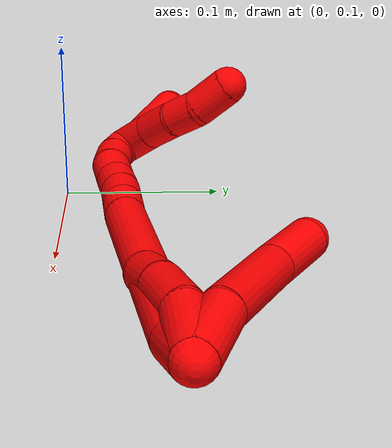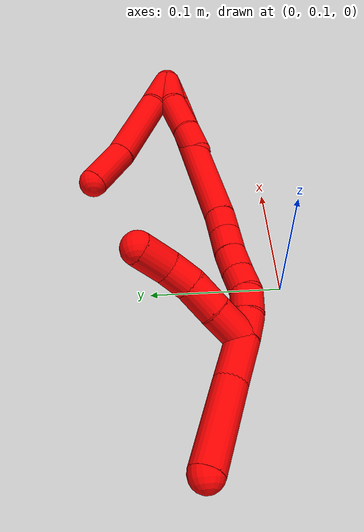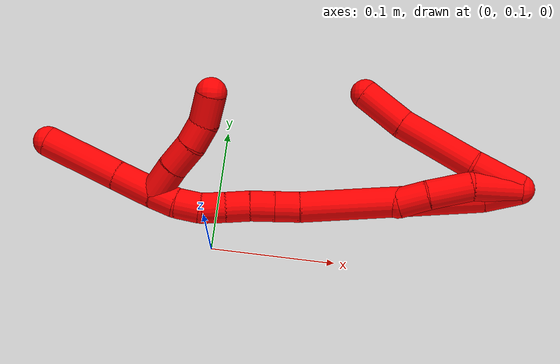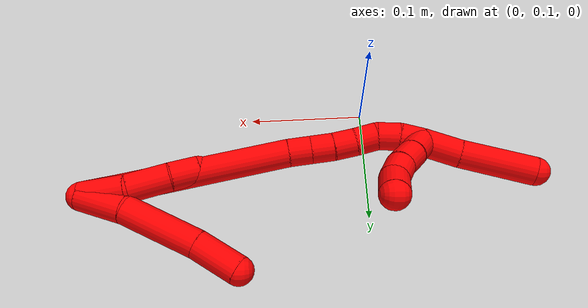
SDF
<sdf version="1.7">
 <world name="default">
  <model name="2">
   <static>0</static>
   <link name="2">
    <collision name="collision-cylinder-e_1_2_8">
     <pose>-0.008056 0.004382 -0.018598 -2.9102 -0.399006 2.09828</pose>
     <geometry><cylinder><radius>0.0125</radius><length>0.041473</length></cylinder></geometry>
     <surface>
      <friction><ode><mu>1.16</mu><mu2>1.16</mu2><slip1>0</slip1><slip2>0</slip2></ode></friction>
      <contact><ode><kp>1e+06</kp><kd>1</kd><max_vel>0</max_vel><min_depth>0.001</min_depth></ode></contact>
     </surface>
    </collision>
    <visual name="visual-cylinder-e_1_2_8">
     <pose>-0.008056 0.004382 -0.018598 -2.9102 -0.399006 2.09828</pose>
     <geometry><cylinder><radius>0.0125</radius><length>0.041473</length></cylinder></geometry>
     <material><ambient>1 0 0 1</ambient></material>
    </visual>
    <collision name="collision-cylinder-e_2_8_9">
     <pose>-0.025675 0.021858 -0.066697 -2.72385 -0.288028 1.20003</pose>
     <geometry><cylinder><radius>0.0125</radius><length>0.067324</length></cylinder></geometry>
     <surface>
      <friction><ode><mu>1.16</mu><mu2>1.16</mu2><slip1>0</slip1><slip2>0</slip2></ode></friction>
      <contact><ode><kp>1e+06</kp><kd>1</kd><max_vel>0</max_vel><min_depth>0.001</min_depth></ode></contact>
     </surface>
    </collision>
    <visual name="visual-cylinder-e_2_8_9">
     <pose>-0.025675 0.021858 -0.066697 -2.72385 -0.288028 1.20003</pose>
     <geometry><cylinder><radius>0.0125</radius><length>0.067324</length></cylinder></geometry>
     <material><ambient>1 0 0 1</ambient></material>
    </visual>
    <collision name="collision-cylinder-e_3_9_6">
     <pose>-0.043792 0.043852 -0.11269 -2.64678 -0.42824 1.42161</pose>
     <geometry><cylinder><radius>0.0125</radius><length>0.041203</length></cylinder></geometry>
     <surface>
      <friction><ode><mu>1.16</mu><mu2>1.16</mu2><slip1>0</slip1><slip2>0</slip2></ode></friction>
      <contact><ode><kp>1e+06</kp><kd>1</kd><max_vel>0</max_vel><min_depth>0.001</min_depth></ode></contact>
     </surface>
    </collision>
    <visual name="visual-cylinder-e_3_9_6">
     <pose>-0.043792 0.043852 -0.11269 -2.64678 -0.42824 1.42161</pose>
     <geometry><cylinder><radius>0.0125</radius><length>0.041203</length></cylinder></geometry>
     <material><ambient>1 0 0 1</ambient></material>
    </visual>
    <collision name="collision-cylinder-e_1_2_10">
     <pose>-0.003393 -0.003649 -0.018988 2.95172 -0.173729 -1.48154</pose>
     <geometry><cylinder><radius>0.0125</radius><length>0.039263</length></cylinder></geometry>
     <surface>
      <friction><ode><mu>1.16</mu><mu2>1.16</mu2><slip1>0</slip1><slip2>0</slip2></ode></friction>
      <contact><ode><kp>1e+06</kp><kd>1</kd><max_vel>0</max_vel><min_depth>0.001</min_depth></ode></contact>
     </surface>
    </collision>
    <visual name="visual-cylinder-e_1_2_10">
     <pose>-0.003393 -0.003649 -0.018988 2.95172 -0.173729 -1.48154</pose>
     <geometry><cylinder><radius>0.0125</radius><length>0.039263</length></cylinder></geometry>
     <material><ambient>1 0 0 1</ambient></material>
    </visual>
    <collision name="collision-cylinder-e_2_10_11">
     <pose>-0.004939 -0.011906 -0.055173 2.8798 0.103446 0.749329</pose>
     <geometry><cylinder><radius>0.0125</radius><length>0.035797</length></cylinder></geometry>
     <surface>
      <friction><ode><mu>1.16</mu><mu2>1.16</mu2><slip1>0</slip1><slip2>0</slip2></ode></friction>
      <contact><ode><kp>1e+06</kp><kd>1</kd><max_vel>0</max_vel><min_depth>0.001</min_depth></ode></contact>
     </surface>
    </collision>
    <visual name="visual-cylinder-e_2_10_11">
     <pose>-0.004939 -0.011906 -0.055173 2.8798 0.103446 0.749329</pose>
     <geometry><cylinder><radius>0.0125</radius><length>0.035797</length></cylinder></geometry>
     <material><ambient>1 0 0 1</ambient></material>
    </visual>
    <collision name="collision-cylinder-e_3_11_5">
     <pose>-0.000439 -0.019124 -0.084272 2.92575 0.214217 1.5632</pose>
     <geometry><cylinder><radius>0.0125</radius><length>0.02494</length></cylinder></geometry>
     <surface>
      <friction><ode><mu>1.16</mu><mu2>1.16</mu2><slip1>0</slip1><slip2>0</slip2></ode></friction>
      <contact><ode><kp>1e+06</kp><kd>1</kd><max_vel>0</max_vel><min_depth>0.001</min_depth></ode></contact>
     </surface>
    </collision>
    <visual name="visual-cylinder-e_3_11_5">
     <pose>-0.000439 -0.019124 -0.084272 2.92575 0.214217 1.5632</pose>
     <geometry><cylinder><radius>0.0125</radius><length>0.02494</length></cylinder></geometry>
     <material><ambient>1 0 0 1</ambient></material>
    </visual>
    <collision name="collision-cylinder-e_1_2_12">
     <pose>0.002838 -0.002611 -0.014577 2.96439 0.189316 1.63722</pose>
     <geometry><cylinder><radius>0.0125</radius><length>0.030157</length></cylinder></geometry>
     <surface>
      <friction><ode><mu>1.16</mu><mu2>1.16</mu2><slip1>0</slip1><slip2>0</slip2></ode></friction>
      <contact><ode><kp>1e+06</kp><kd>1</kd><max_vel>0</max_vel><min_depth>0.001</min_depth></ode></contact>
     </surface>
    </collision>
    <visual name="visual-cylinder-e_1_2_12">
     <pose>0.002838 -0.002611 -0.014577 2.96439 0.189316 1.63722</pose>
     <geometry><cylinder><radius>0.0125</radius><length>0.030157</length></cylinder></geometry>
     <material><ambient>1 0 0 1</ambient></material>
    </visual>
    <collision name="collision-cylinder-e_2_12_13">
     <pose>0.001899 -0.021203 -0.101906 2.92535 -0.050656 -0.458574</pose>
     <geometry><cylinder><radius>0.0125</radius><length>0.149165</length></cylinder></geometry>
     <surface>
      <friction><ode><mu>1.16</mu><mu2>1.16</mu2><slip1>0</slip1><slip2>0</slip2></ode></friction>
      <contact><ode><kp>1e+06</kp><kd>1</kd><max_vel>0</max_vel><min_depth>0.001</min_depth></ode></contact>
     </surface>
    </collision>
    <visual name="visual-cylinder-e_2_12_13">
     <pose>0.001899 -0.021203 -0.101906 2.92535 -0.050656 -0.458574</pose>
     <geometry><cylinder><radius>0.0125</radius><length>0.149165</length></cylinder></geometry>
     <material><ambient>1 0 0 1</ambient></material>
    </visual>
    <collision name="collision-cylinder-e_3_13_14">
     <pose>-0.002853 -0.038677 -0.184532 2.99164 -0.097364 -1.15074</pose>
     <geometry><cylinder><radius>0.0125</radius><length>0.020066</length></cylinder></geometry>
     <surface>
      <friction><ode><mu>1.16</mu><mu2>1.16</mu2><slip1>0</slip1><slip2>0</slip2></ode></friction>
      <contact><ode><kp>1e+06</kp><kd>1</kd><max_vel>0</max_vel><min_depth>0.001</min_depth></ode></contact>
     </surface>
    </collision>
    <visual name="visual-cylinder-e_3_13_14">
     <pose>-0.002853 -0.038677 -0.184532 2.99164 -0.097364 -1.15074</pose>
     <geometry><cylinder><radius>0.0125</radius><length>0.020066</length></cylinder></geometry>
     <material><ambient>1 0 0 1</ambient></material>
    </visual>
    <collision name="collision-cylinder-e_4_14_15">
     <pose>-0.004822 -0.041654 -0.204302 2.99258 -0.098938 -1.1713</pose>
     <geometry><cylinder><radius>0.0125</radius><length>0.020115</length></cylinder></geometry>
     <surface>
      <friction><ode><mu>1.16</mu><mu2>1.16</mu2><slip1>0</slip1><slip2>0</slip2></ode></friction>
      <contact><ode><kp>1e+06</kp><kd>1</kd><max_vel>0</max_vel><min_depth>0.001</min_depth></ode></contact>
     </surface>
    </collision>
    <visual name="visual-cylinder-e_4_14_15">
     <pose>-0.004822 -0.041654 -0.204302 2.99258 -0.098938 -1.1713</pose>
     <geometry><cylinder><radius>0.0125</radius><length>0.020115</length></cylinder></geometry>
     <material><ambient>1 0 0 1</ambient></material>
    </visual>
    <collision name="collision-cylinder-e_5_15_16">
     <pose>-0.006346 -0.045393 -0.224106 2.91796 -0.052215 -0.457005</pose>
     <geometry><cylinder><radius>0.0125</radius><length>0.020347</length></cylinder></geometry>
     <surface>
      <friction><ode><mu>1.16</mu><mu2>1.16</mu2><slip1>0</slip1><slip2>0</slip2></ode></friction>
      <contact><ode><kp>1e+06</kp><kd>1</kd><max_vel>0</max_vel><min_depth>0.001</min_depth></ode></contact>
     </surface>
    </collision>
    <visual name="visual-cylinder-e_5_15_16">
     <pose>-0.006346 -0.045393 -0.224106 2.91796 -0.052215 -0.457005</pose>
     <geometry><cylinder><radius>0.0125</radius><length>0.020347</length></cylinder></geometry>
     <material><ambient>1 0 0 1</ambient></material>
    </visual>
    <collision name="collision-cylinder-e_6_16_17">
     <pose>-0.008258 -0.050444 -0.243522 2.85547 -0.138475 -0.897359</pose>
     <geometry><cylinder><radius>0.0125</radius><length>0.020016</length></cylinder></geometry>
     <surface>
      <friction><ode><mu>1.16</mu><mu2>1.16</mu2><slip1>0</slip1><slip2>0</slip2></ode></friction>
      <contact><ode><kp>1e+06</kp><kd>1</kd><max_vel>0</max_vel><min_depth>0.001</min_depth></ode></contact>
     </surface>
    </collision>
    <visual name="visual-cylinder-e_6_16_17">
     <pose>-0.008258 -0.050444 -0.243522 2.85547 -0.138475 -0.897359</pose>
     <geometry><cylinder><radius>0.0125</radius><length>0.020016</length></cylinder></geometry>
     <material><ambient>1 0 0 1</ambient></material>
    </visual>
    <collision name="collision-cylinder-e_7_17_18">
     <pose>-0.011701 -0.053162 -0.262845 -3.13353 -0.206976 3.06401</pose>
     <geometry><cylinder><radius>0.0125</radius><length>0.020058</length></cylinder></geometry>
     <surface>
      <friction><ode><mu>1.16</mu><mu2>1.16</mu2><slip1>0</slip1><slip2>0</slip2></ode></friction>
      <contact><ode><kp>1e+06</kp><kd>1</kd><max_vel>0</max_vel><min_depth>0.001</min_depth></ode></contact>
     </surface>
    </collision>
    <visual name="visual-cylinder-e_7_17_18">
     <pose>-0.011701 -0.053162 -0.262845 -3.13353 -0.206976 3.06401</pose>
     <geometry><cylinder><radius>0.0125</radius><length>0.020058</length></cylinder></geometry>
     <material><ambient>1 0 0 1</ambient></material>
    </visual>
    <collision name="collision-cylinder-e_8_18_1">
     <pose>-0.016478 -0.051002 -0.282097 -2.92454 -0.273969 1.80388</pose>
     <geometry><cylinder><radius>0.0125</radius><length>0.020077</length></cylinder></geometry>
     <surface>
      <friction><ode><mu>1.16</mu><mu2>1.16</mu2><slip1>0</slip1><slip2>0</slip2></ode></friction>
      <contact><ode><kp>1e+06</kp><kd>1</kd><max_vel>0</max_vel><min_depth>0.001</min_depth></ode></contact>
     </surface>
    </collision>
    <visual name="visual-cylinder-e_8_18_1">
     <pose>-0.016478 -0.051002 -0.282097 -2.92454 -0.273969 1.80388</pose>
     <geometry><cylinder><radius>0.0125</radius><length>0.020077</length></cylinder></geometry>
     <material><ambient>1 0 0 1</ambient></material>
    </visual>
    <collision name="collision-cylinder-e_1_1_19">
     <pose>-0.030053 -0.044553 -0.283187 -0.48205 -0.856173 0.22339</pose>
     <geometry><cylinder><radius>0.0125</radius><length>0.028753</length></cylinder></geometry>
     <surface>
      <friction><ode><mu>1.16</mu><mu2>1.16</mu2><slip1>0</slip1><slip2>0</slip2></ode></friction>
      <contact><ode><kp>1e+06</kp><kd>1</kd><max_vel>0</max_vel><min_depth>0.001</min_depth></ode></contact>
     </surface>
    </collision>
    <visual name="visual-cylinder-e_1_1_19">
     <pose>-0.030053 -0.044553 -0.283187 -0.48205 -0.856173 0.22339</pose>
     <geometry><cylinder><radius>0.0125</radius><length>0.028753</length></cylinder></geometry>
     <material><ambient>1 0 0 1</ambient></material>
    </visual>
    <collision name="collision-cylinder-e_2_19_20">
     <pose>-0.049507 -0.036306 -0.266911 -0.455059 -0.772103 0.187664</pose>
     <geometry><cylinder><radius>0.0125</radius><length>0.024641</length></cylinder></geometry>
     <surface>
      <friction><ode><mu>1.16</mu><mu2>1.16</mu2><slip1>0</slip1><slip2>0</slip2></ode></friction>
      <contact><ode><kp>1e+06</kp><kd>1</kd><max_vel>0</max_vel><min_depth>0.001</min_depth></ode></contact>
     </surface>
    </collision>
    <visual name="visual-cylinder-e_2_19_20">
     <pose>-0.049507 -0.036306 -0.266911 -0.455059 -0.772103 0.187664</pose>
     <geometry><cylinder><radius>0.0125</radius><length>0.024641</length></cylinder></geometry>
     <material><ambient>1 0 0 1</ambient></material>
    </visual>
    <collision name="collision-cylinder-e_3_20_21">
     <pose>-0.06591 -0.028013 -0.25381 -0.706415 -0.854357 0.332544</pose>
     <geometry><cylinder><radius>0.0125</radius><length>0.020706</length></cylinder></geometry>
     <surface>
      <friction><ode><mu>1.16</mu><mu2>1.16</mu2><slip1>0</slip1><slip2>0</slip2></ode></friction>
      <contact><ode><kp>1e+06</kp><kd>1</kd><max_vel>0</max_vel><min_depth>0.001</min_depth></ode></contact>
     </surface>
    </collision>
    <visual name="visual-cylinder-e_3_20_21">
     <pose>-0.06591 -0.028013 -0.25381 -0.706415 -0.854357 0.332544</pose>
     <geometry><cylinder><radius>0.0125</radius><length>0.020706</length></cylinder></geometry>
     <material><ambient>1 0 0 1</ambient></material>
    </visual>
    <collision name="collision-cylinder-e_4_21_4">
     <pose>-0.085485 -0.019472 -0.245146 -0.868511 -1.1401 0.577958</pose>
     <geometry><cylinder><radius>0.0125</radius><length>0.0259</length></cylinder></geometry>
     <surface>
      <friction><ode><mu>1.16</mu><mu2>1.16</mu2><slip1>0</slip1><slip2>0</slip2></ode></friction>
      <contact><ode><kp>1e+06</kp><kd>1</kd><max_vel>0</max_vel><min_depth>0.001</min_depth></ode></contact>
     </surface>
    </collision>
    <visual name="visual-cylinder-e_4_21_4">
     <pose>-0.085485 -0.019472 -0.245146 -0.868511 -1.1401 0.577958</pose>
     <geometry><cylinder><radius>0.0125</radius><length>0.0259</length></cylinder></geometry>
     <material><ambient>1 0 0 1</ambient></material>
    </visual>
    <collision name="collision-cylinder-e_1_1_22">
     <pose>-0.023701 -0.044108 -0.307645 -2.85127 -0.261901 1.46664</pose>
     <geometry><cylinder><radius>0.0125</radius><length>0.034814</length></cylinder></geometry>
     <surface>
      <friction><ode><mu>1.16</mu><mu2>1.16</mu2><slip1>0</slip1><slip2>0</slip2></ode></friction>
      <contact><ode><kp>1e+06</kp><kd>1</kd><max_vel>0</max_vel><min_depth>0.001</min_depth></ode></contact>
     </surface>
    </collision>
    <visual name="visual-cylinder-e_1_1_22">
     <pose>-0.023701 -0.044108 -0.307645 -2.85127 -0.261901 1.46664</pose>
     <geometry><cylinder><radius>0.0125</radius><length>0.034814</length></cylinder></geometry>
     <material><ambient>1 0 0 1</ambient></material>
    </visual>
    <collision name="collision-cylinder-e_2_22_3">
     <pose>-0.039626 -0.032761 -0.353575 -2.92589 -0.357912 2.0629</pose>
     <geometry><cylinder><radius>0.0125</radius><length>0.065186</length></cylinder></geometry>
     <surface>
      <friction><ode><mu>1.16</mu><mu2>1.16</mu2><slip1>0</slip1><slip2>0</slip2></ode></friction>
      <contact><ode><kp>1e+06</kp><kd>1</kd><max_vel>0</max_vel><min_depth>0.001</min_depth></ode></contact>
     </surface>
    </collision>
    <visual name="visual-cylinder-e_2_22_3">
     <pose>-0.039626 -0.032761 -0.353575 -2.92589 -0.357912 2.0629</pose>
     <geometry><cylinder><radius>0.0125</radius><length>0.065186</length></cylinder></geometry>
     <material><ambient>1 0 0 1</ambient></material>
    </visual>
    <collision name="collision-sphere-3">
     <pose>-0.051044 -0.026227 -0.383395 0 -0 0</pose>
     <geometry><sphere><radius>0.0125</radius></sphere></geometry>
     <surface>
      <friction><ode><mu>1.16</mu><mu2>1.16</mu2><slip1>0</slip1><slip2>0</slip2></ode></friction>
      <contact><ode><kp>1e+06</kp><kd>1</kd><max_vel>0</max_vel><min_depth>0.001</min_depth></ode></contact>
     </surface>
    </collision>
    <visual name="visual-sphere-3">
     <pose>-0.051044 -0.026227 -0.383395 0 -0 0</pose>
     <geometry><sphere><radius>0.0125</radius></sphere></geometry>
     <material><ambient>1 0 0 1</ambient></material>
    </visual>
    <collision name="collision-sphere-22">
     <pose>-0.028208 -0.039295 -0.323755 0 -0 0</pose>
     <geometry><sphere><radius>0.0125</radius></sphere></geometry>
     <surface>
      <friction><ode><mu>1.16</mu><mu2>1.16</mu2><slip1>0</slip1><slip2>0</slip2></ode></friction>
      <contact><ode><kp>1e+06</kp><kd>1</kd><max_vel>0</max_vel><min_depth>0.001</min_depth></ode></contact>
     </surface>
    </collision>
    <visual name="visual-sphere-22">
     <pose>-0.028208 -0.039295 -0.323755 0 -0 0</pose>
     <geometry><sphere><radius>0.0125</radius></sphere></geometry>
     <material><ambient>1 0 0 1</ambient></material>
    </visual>
    <collision name="collision-sphere-4">
     <pose>-0.097253 -0.015345 -0.241653 0 -0 0</pose>
     <geometry><sphere><radius>0.0125</radius></sphere></geometry>
     <surface>
      <friction><ode><mu>1.16</mu><mu2>1.16</mu2><slip1>0</slip1><slip2>0</slip2></ode></friction>
      <contact><ode><kp>1e+06</kp><kd>1</kd><max_vel>0</max_vel><min_depth>0.001</min_depth></ode></contact>
     </surface>
    </collision>
    <visual name="visual-sphere-4">
     <pose>-0.097253 -0.015345 -0.241653 0 -0 0</pose>
     <geometry><sphere><radius>0.0125</radius></sphere></geometry>
     <material><ambient>1 0 0 1</ambient></material>
    </visual>
    <collision name="collision-sphere-21">
     <pose>-0.073718 -0.0236 -0.248638 0 -0 0</pose>
     <geometry><sphere><radius>0.0125</radius></sphere></geometry>
     <surface>
      <friction><ode><mu>1.16</mu><mu2>1.16</mu2><slip1>0</slip1><slip2>0</slip2></ode></friction>
      <contact><ode><kp>1e+06</kp><kd>1</kd><max_vel>0</max_vel><min_depth>0.001</min_depth></ode></contact>
     </surface>
    </collision>
    <visual name="visual-sphere-21">
     <pose>-0.073718 -0.0236 -0.248638 0 -0 0</pose>
     <geometry><sphere><radius>0.0125</radius></sphere></geometry>
     <material><ambient>1 0 0 1</ambient></material>
    </visual>
    <collision name="collision-sphere-20">
     <pose>-0.058103 -0.032426 -0.258982 0 -0 0</pose>
     <geometry><sphere><radius>0.0125</radius></sphere></geometry>
     <surface>
      <friction><ode><mu>1.16</mu><mu2>1.16</mu2><slip1>0</slip1><slip2>0</slip2></ode></friction>
      <contact><ode><kp>1e+06</kp><kd>1</kd><max_vel>0</max_vel><min_depth>0.001</min_depth></ode></contact>
     </surface>
    </collision>
    <visual name="visual-sphere-20">
     <pose>-0.058103 -0.032426 -0.258982 0 -0 0</pose>
     <geometry><sphere><radius>0.0125</radius></sphere></geometry>
     <material><ambient>1 0 0 1</ambient></material>
    </visual>
    <collision name="collision-sphere-11">
     <pose>-0.00309 -0.016514 -0.07237 0 -0 0</pose>
     <geometry><sphere><radius>0.0125</radius></sphere></geometry>
     <surface>
      <friction><ode><mu>1.16</mu><mu2>1.16</mu2><slip1>0</slip1><slip2>0</slip2></ode></friction>
      <contact><ode><kp>1e+06</kp><kd>1</kd><max_vel>0</max_vel><min_depth>0.001</min_depth></ode></contact>
     </surface>
    </collision>
    <visual name="visual-sphere-11">
     <pose>-0.00309 -0.016514 -0.07237 0 -0 0</pose>
     <geometry><sphere><radius>0.0125</radius></sphere></geometry>
     <material><ambient>1 0 0 1</ambient></material>
    </visual>
    <collision name="collision-sphere-10">
     <pose>-0.006787 -0.007299 -0.037977 0 -0 0</pose>
     <geometry><sphere><radius>0.0125</radius></sphere></geometry>
     <surface>
      <friction><ode><mu>1.16</mu><mu2>1.16</mu2><slip1>0</slip1><slip2>0</slip2></ode></friction>
      <contact><ode><kp>1e+06</kp><kd>1</kd><max_vel>0</max_vel><min_depth>0.001</min_depth></ode></contact>
     </surface>
    </collision>
    <visual name="visual-sphere-10">
     <pose>-0.006787 -0.007299 -0.037977 0 -0 0</pose>
     <geometry><sphere><radius>0.0125</radius></sphere></geometry>
     <material><ambient>1 0 0 1</ambient></material>
    </visual>
    <collision name="collision-sphere-6">
     <pose>-0.052347 0.052751 -0.129183 0 -0 0</pose>
     <geometry><sphere><radius>0.0125</radius></sphere></geometry>
     <surface>
      <friction><ode><mu>1.16</mu><mu2>1.16</mu2><slip1>0</slip1><slip2>0</slip2></ode></friction>
      <contact><ode><kp>1e+06</kp><kd>1</kd><max_vel>0</max_vel><min_depth>0.001</min_depth></ode></contact>
     </surface>
    </collision>
    <visual name="visual-sphere-6">
     <pose>-0.052347 0.052751 -0.129183 0 -0 0</pose>
     <geometry><sphere><radius>0.0125</radius></sphere></geometry>
     <material><ambient>1 0 0 1</ambient></material>
    </visual>
    <collision name="collision-sphere-9">
     <pose>-0.035237 0.034952 -0.096197 0 -0 0</pose>
     <geometry><sphere><radius>0.0125</radius></sphere></geometry>
     <surface>
      <friction><ode><mu>1.16</mu><mu2>1.16</mu2><slip1>0</slip1><slip2>0</slip2></ode></friction>
      <contact><ode><kp>1e+06</kp><kd>1</kd><max_vel>0</max_vel><min_depth>0.001</min_depth></ode></contact>
     </surface>
    </collision>
    <visual name="visual-sphere-9">
     <pose>-0.035237 0.034952 -0.096197 0 -0 0</pose>
     <geometry><sphere><radius>0.0125</radius></sphere></geometry>
     <material><ambient>1 0 0 1</ambient></material>
    </visual>
    <collision name="collision-sphere-2">
     <geometry><sphere><radius>0.0125</radius></sphere></geometry>
     <surface>
      <friction><ode><mu>1.16</mu><mu2>1.16</mu2><slip1>0</slip1><slip2>0</slip2></ode></friction>
      <contact><ode><kp>1e+06</kp><kd>1</kd><max_vel>0</max_vel><min_depth>0.001</min_depth></ode></contact>
     </surface>
    </collision>
    <visual name="visual-sphere-2">
     <geometry><sphere><radius>0.0125</radius></sphere></geometry>
     <material><ambient>1 0 0 1</ambient></material>
    </visual>
    <collision name="collision-sphere-19">
     <pose>-0.040912 -0.040185 -0.274839 0 -0 0</pose>
     <geometry><sphere><radius>0.0125</radius></sphere></geometry>
     <surface>
      <friction><ode><mu>1.16</mu><mu2>1.16</mu2><slip1>0</slip1><slip2>0</slip2></ode></friction>
      <contact><ode><kp>1e+06</kp><kd>1</kd><max_vel>0</max_vel><min_depth>0.001</min_depth></ode></contact>
     </surface>
    </collision>
    <visual name="visual-sphere-19">
     <pose>-0.040912 -0.040185 -0.274839 0 -0 0</pose>
     <geometry><sphere><radius>0.0125</radius></sphere></geometry>
     <material><ambient>1 0 0 1</ambient></material>
    </visual>
    <collision name="collision-sphere-8">
     <pose>-0.016112 0.008764 -0.037197 0 -0 0</pose>
     <geometry><sphere><radius>0.0125</radius></sphere></geometry>
     <surface>
      <friction><ode><mu>1.16</mu><mu2>1.16</mu2><slip1>0</slip1><slip2>0</slip2></ode></friction>
      <contact><ode><kp>1e+06</kp><kd>1</kd><max_vel>0</max_vel><min_depth>0.001</min_depth></ode></contact>
     </surface>
    </collision>
    <visual name="visual-sphere-8">
     <pose>-0.016112 0.008764 -0.037197 0 -0 0</pose>
     <geometry><sphere><radius>0.0125</radius></sphere></geometry>
     <material><ambient>1 0 0 1</ambient></material>
    </visual>
    <collision name="collision-sphere-5">
     <pose>0.002211 -0.021733 -0.096174 0 -0 0</pose>
     <geometry><sphere><radius>0.0125</radius></sphere></geometry>
     <surface>
      <friction><ode><mu>1.16</mu><mu2>1.16</mu2><slip1>0</slip1><slip2>0</slip2></ode></friction>
      <contact><ode><kp>1e+06</kp><kd>1</kd><max_vel>0</max_vel><min_depth>0.001</min_depth></ode></contact>
     </surface>
    </collision>
    <visual name="visual-sphere-5">
     <pose>0.002211 -0.021733 -0.096174 0 -0 0</pose>
     <geometry><sphere><radius>0.0125</radius></sphere></geometry>
     <material><ambient>1 0 0 1</ambient></material>
    </visual>
    <collision name="collision-sphere-12">
     <pose>0.005675 -0.005221 -0.029155 0 -0 0</pose>
     <geometry><sphere><radius>0.0125</radius></sphere></geometry>
     <surface>
      <friction><ode><mu>1.16</mu><mu2>1.16</mu2><slip1>0</slip1><slip2>0</slip2></ode></friction>
      <contact><ode><kp>1e+06</kp><kd>1</kd><max_vel>0</max_vel><min_depth>0.001</min_depth></ode></contact>
     </surface>
    </collision>
    <visual name="visual-sphere-12">
     <pose>0.005675 -0.005221 -0.029155 0 -0 0</pose>
     <geometry><sphere><radius>0.0125</radius></sphere></geometry>
     <material><ambient>1 0 0 1</ambient></material>
    </visual>
    <collision name="collision-sphere-13">
     <pose>-0.001878 -0.037185 -0.174658 0 -0 0</pose>
     <geometry><sphere><radius>0.0125</radius></sphere></geometry>
     <surface>
      <friction><ode><mu>1.16</mu><mu2>1.16</mu2><slip1>0</slip1><slip2>0</slip2></ode></friction>
      <contact><ode><kp>1e+06</kp><kd>1</kd><max_vel>0</max_vel><min_depth>0.001</min_depth></ode></contact>
     </surface>
    </collision>
    <visual name="visual-sphere-13">
     <pose>-0.001878 -0.037185 -0.174658 0 -0 0</pose>
     <geometry><sphere><radius>0.0125</radius></sphere></geometry>
     <material><ambient>1 0 0 1</ambient></material>
    </visual>
    <collision name="collision-sphere-14">
     <pose>-0.003828 -0.040168 -0.194405 0 -0 0</pose>
     <geometry><sphere><radius>0.0125</radius></sphere></geometry>
     <surface>
      <friction><ode><mu>1.16</mu><mu2>1.16</mu2><slip1>0</slip1><slip2>0</slip2></ode></friction>
      <contact><ode><kp>1e+06</kp><kd>1</kd><max_vel>0</max_vel><min_depth>0.001</min_depth></ode></contact>
     </surface>
    </collision>
    <visual name="visual-sphere-14">
     <pose>-0.003828 -0.040168 -0.194405 0 -0 0</pose>
     <geometry><sphere><radius>0.0125</radius></sphere></geometry>
     <material><ambient>1 0 0 1</ambient></material>
    </visual>
    <collision name="collision-sphere-15">
     <pose>-0.005815 -0.04314 -0.214199 0 -0 0</pose>
     <geometry><sphere><radius>0.0125</radius></sphere></geometry>
     <surface>
      <friction><ode><mu>1.16</mu><mu2>1.16</mu2><slip1>0</slip1><slip2>0</slip2></ode></friction>
      <contact><ode><kp>1e+06</kp><kd>1</kd><max_vel>0</max_vel><min_depth>0.001</min_depth></ode></contact>
     </surface>
    </collision>
    <visual name="visual-sphere-15">
     <pose>-0.005815 -0.04314 -0.214199 0 -0 0</pose>
     <geometry><sphere><radius>0.0125</radius></sphere></geometry>
     <material><ambient>1 0 0 1</ambient></material>
    </visual>
    <collision name="collision-sphere-16">
     <pose>-0.006877 -0.047646 -0.234012 0 -0 0</pose>
     <geometry><sphere><radius>0.0125</radius></sphere></geometry>
     <surface>
      <friction><ode><mu>1.16</mu><mu2>1.16</mu2><slip1>0</slip1><slip2>0</slip2></ode></friction>
      <contact><ode><kp>1e+06</kp><kd>1</kd><max_vel>0</max_vel><min_depth>0.001</min_depth></ode></contact>
     </surface>
    </collision>
    <visual name="visual-sphere-16">
     <pose>-0.006877 -0.047646 -0.234012 0 -0 0</pose>
     <geometry><sphere><radius>0.0125</radius></sphere></geometry>
     <material><ambient>1 0 0 1</ambient></material>
    </visual>
    <collision name="collision-sphere-17">
     <pose>-0.00964 -0.053241 -0.253031 0 -0 0</pose>
     <geometry><sphere><radius>0.0125</radius></sphere></geometry>
     <surface>
      <friction><ode><mu>1.16</mu><mu2>1.16</mu2><slip1>0</slip1><slip2>0</slip2></ode></friction>
      <contact><ode><kp>1e+06</kp><kd>1</kd><max_vel>0</max_vel><min_depth>0.001</min_depth></ode></contact>
     </surface>
    </collision>
    <visual name="visual-sphere-17">
     <pose>-0.00964 -0.053241 -0.253031 0 -0 0</pose>
     <geometry><sphere><radius>0.0125</radius></sphere></geometry>
     <material><ambient>1 0 0 1</ambient></material>
    </visual>
    <collision name="collision-sphere-18">
     <pose>-0.013762 -0.053083 -0.27266 0 -0 0</pose>
     <geometry><sphere><radius>0.0125</radius></sphere></geometry>
     <surface>
      <friction><ode><mu>1.16</mu><mu2>1.16</mu2><slip1>0</slip1><slip2>0</slip2></ode></friction>
      <contact><ode><kp>1e+06</kp><kd>1</kd><max_vel>0</max_vel><min_depth>0.001</min_depth></ode></contact>
     </surface>
    </collision>
    <visual name="visual-sphere-18">
     <pose>-0.013762 -0.053083 -0.27266 0 -0 0</pose>
     <geometry><sphere><radius>0.0125</radius></sphere></geometry>
     <material><ambient>1 0 0 1</ambient></material>
    </visual>
    <collision name="collision-sphere-1">
     <pose>-0.019194 -0.048921 -0.291535 0 -0 0</pose>
     <geometry><sphere><radius>0.0125</radius></sphere></geometry>
     <surface>
      <friction><ode><mu>1.16</mu><mu2>1.16</mu2><slip1>0</slip1><slip2>0</slip2></ode></friction>
      <contact><ode><kp>1e+06</kp><kd>1</kd><max_vel>0</max_vel><min_depth>0.001</min_depth></ode></contact>
     </surface>
    </collision>
    <visual name="visual-sphere-1">
     <pose>-0.019194 -0.048921 -0.291535 0 -0 0</pose>
     <geometry><sphere><radius>0.0125</radius></sphere></geometry>
     <material><ambient>1 0 0 1</ambient></material>
    </visual>
    <inertial>
     <pose>-0.018539 -0.017862 -0.158176 0 -0 0</pose>
     <mass>0.75</mass>
     <inertia>
      <ixx>0.000187</ixx>
      <ixy>0</ixy>
      <ixz>0</ixz>
      <iyy>-0.000287</iyy>
      <iyz>0</iyz>
      <izz>4.3e-05</izz>
     </inertia>
    </inertial>
   </link>
   <pose>0.242382 0.174915 0.018903 -1.27788 0.998063 -1.29943</pose>
  </model>
 </world>
</sdf>
